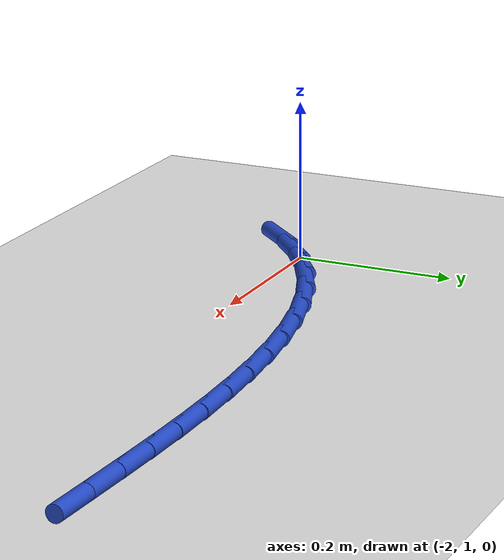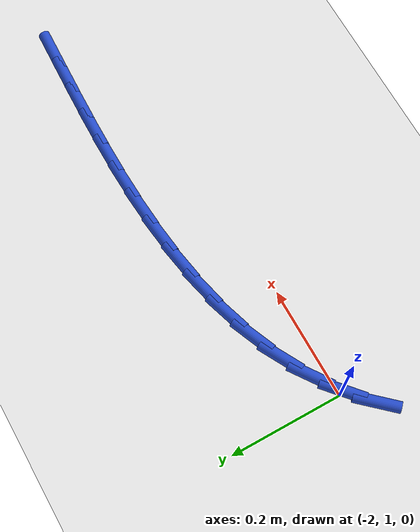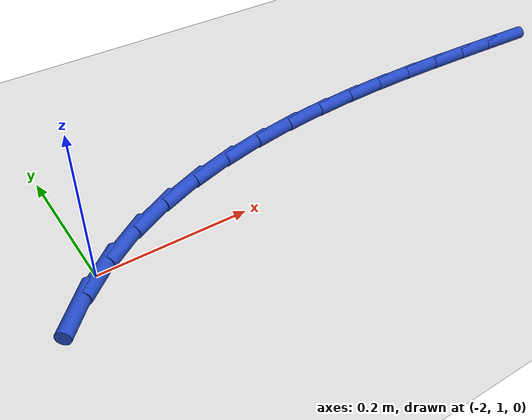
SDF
<sdf version="1.6">
 <world name="default">
  <model name="ground_plane">
   <static>1</static>
   <link name="link">
    <collision name="collision">
     <geometry><plane><normal>0 0 1</normal><size>100 100</size></plane></geometry>
     <surface><friction><ode><mu>100</mu><mu2>50</mu2></ode></friction></surface>
    </collision>
    <visual name="visual">
     <cast_shadows>0</cast_shadows>
     <geometry><plane><normal>0 0 1</normal><size>100 100</size></plane></geometry>
     <material>
      <script><uri>file://media/materials/scripts/gazebo.material</uri><name>Gazebo/WhiteGlow</name></script>
     </material>
    </visual>
   </link>
  </model>
  <model name="line">
   <link name="link_33">
    <pose>-1.2137407368306978 1.1250537046467293 0.01 0 1.57 -0.03736176133366221</pose>
    <collision name="collision">
     <geometry><cylinder><radius>0.01</radius><length>0.08</length></cylinder></geometry>
    </collision>
    <visual name="visual">
     <material>
      <script><name>Gazebo/Blue</name><uri>file://media/materials/scripts/gazebo.material</uri></script>
     </material>
     <geometry><cylinder><radius>0.01</radius><length>0.08</length></cylinder></geometry>
    </visual>
   </link>
   <link name="link_34">
    <pose>-1.2706698525451077 1.127181666914844 0.01 0 1.57 -0.03362534800206802</pose>
    <collision name="collision">
     <geometry><cylinder><radius>0.01</radius><length>0.08</length></cylinder></geometry>
    </collision>
    <visual name="visual">
     <material>
      <script><name>Gazebo/Blue</name><uri>file://media/materials/scripts/gazebo.material</uri></script>
     </material>
     <geometry><cylinder><radius>0.01</radius><length>0.08</length></cylinder></geometry>
    </visual>
   </link>
   <link name="link_35">
    <pose>-1.3276550085750107 1.1290985351164045 0.01 0 1.57 -0.02341732761946599</pose>
    <collision name="collision">
     <geometry><cylinder><radius>0.01</radius><length>0.08</length></cylinder></geometry>
    </collision>
    <visual name="visual">
     <material>
      <script><name>Gazebo/Blue</name><uri>file://media/materials/scripts/gazebo.material</uri></script>
     </material>
     <geometry><cylinder><radius>0.01</radius><length>0.08</length></cylinder></geometry>
    </visual>
   </link>
   <link name="link_36">
    <pose>-1.3848149035274224 1.1304373118276914 0.01 0 1.57 -0.006852198448877881</pose>
    <collision name="collision">
     <geometry><cylinder><radius>0.01</radius><length>0.08</length></cylinder></geometry>
    </collision>
    <visual name="visual">
     <material>
      <script><name>Gazebo/Blue</name><uri>file://media/materials/scripts/gazebo.material</uri></script>
     </material>
     <geometry><cylinder><radius>0.01</radius><length>0.08</length></cylinder></geometry>
    </visual>
   </link>
   <link name="link_37">
    <pose>-1.4422682360093606 1.1308309996249846 0.01 0 1.57 0.015869938669421817</pose>
    <collision name="collision">
     <geometry><cylinder><radius>0.01</radius><length>0.08</length></cylinder></geometry>
    </collision>
    <visual name="visual">
     <material>
      <script><name>Gazebo/Blue</name><uri>file://media/materials/scripts/gazebo.material</uri></script>
     </material>
     <geometry><cylinder><radius>0.01</radius><length>0.08</length></cylinder></geometry>
    </visual>
   </link>
   <link name="link_38">
    <pose>-1.5001337046278413 1.1299126010845635 0.01 0 1.57 0.044450999543644815</pose>
    <collision name="collision">
     <geometry><cylinder><radius>0.01</radius><length>0.08</length></cylinder></geometry>
    </collision>
    <visual name="visual">
     <material>
      <script><name>Gazebo/Blue</name><uri>file://media/materials/scripts/gazebo.material</uri></script>
     </material>
     <geometry><cylinder><radius>0.01</radius><length>0.08</length></cylinder></geometry>
    </visual>
   </link>
   <link name="link_39">
    <pose>-1.5585299942407036 1.1273151166338728 0.01 0 1.57 0.07902952374252589</pose>
    <collision name="collision">
     <geometry><cylinder><radius>0.01</radius><length>0.08</length></cylinder></geometry>
    </collision>
    <visual name="visual">
     <material>
      <script><name>Gazebo/Blue</name><uri>file://media/materials/scripts/gazebo.material</uri></script>
     </material>
     <geometry><cylinder><radius>0.01</radius><length>0.08</length></cylinder></geometry>
    </visual>
   </link>
   <link name="link_40">
    <pose>-1.617437646507398 1.1226499565406955 0.01 0 1.57 0.12152791240318976</pose>
    <collision name="collision">
     <geometry><cylinder><radius>0.01</radius><length>0.08</length></cylinder></geometry>
    </collision>
    <visual name="visual">
     <material>
      <script><name>Gazebo/Blue</name><uri>file://media/materials/scripts/gazebo.material</uri></script>
     </material>
     <geometry><cylinder><radius>0.01</radius><length>0.08</length></cylinder></geometry>
    </visual>
   </link>
   <link name="link_41">
    <pose>-1.6763594049423933 1.115453856833642 0.01 0 1.57 0.173208155284162</pose>
    <collision name="collision">
     <geometry><cylinder><radius>0.01</radius><length>0.08</length></cylinder></geometry>
    </collision>
    <visual name="visual">
     <material>
      <script><name>Gazebo/Blue</name><uri>file://media/materials/scripts/gazebo.material</uri></script>
     </material>
     <geometry><cylinder><radius>0.01</radius><length>0.08</length></cylinder></geometry>
    </visual>
   </link>
   <link name="link_42">
    <pose>-1.7346947860377404 1.105247420369937 0.01 0 1.57 0.2352227452290863</pose>
    <collision name="collision">
     <geometry><cylinder><radius>0.01</radius><length>0.08</length></cylinder></geometry>
    </collision>
    <visual name="visual">
     <material>
      <script><name>Gazebo/Blue</name><uri>file://media/materials/scripts/gazebo.material</uri></script>
     </material>
     <geometry><cylinder><radius>0.01</radius><length>0.08</length></cylinder></geometry>
    </visual>
   </link>
   <link name="link_43">
    <pose>-1.7918433062854882 1.091551250006804 0.01 0 1.57 0.3088789564547979</pose>
    <collision name="collision">
     <geometry><cylinder><radius>0.01</radius><length>0.08</length></cylinder></geometry>
    </collision>
    <visual name="visual">
     <material>
      <script><name>Gazebo/Blue</name><uri>file://media/materials/scripts/gazebo.material</uri></script>
     </material>
     <geometry><cylinder><radius>0.01</radius><length>0.08</length></cylinder></geometry>
    </visual>
   </link>
   <link name="link_44">
    <pose>-1.8472044821776872 1.0738859486014678 0.01 0 1.57 0.39546008494980117</pose>
    <collision name="collision">
     <geometry><cylinder><radius>0.01</radius><length>0.08</length></cylinder></geometry>
    </collision>
    <visual name="visual">
     <material>
      <script><name>Gazebo/Blue</name><uri>file://media/materials/scripts/gazebo.material</uri></script>
     </material>
     <geometry><cylinder><radius>0.01</radius><length>0.08</length></cylinder></geometry>
    </visual>
   </link>
   <link name="link_45">
    <pose>-1.900177830206387 1.0517721190111522 0.01 0 1.57 0.4959048531445742</pose>
    <collision name="collision">
     <geometry><cylinder><radius>0.01</radius><length>0.08</length></cylinder></geometry>
    </collision>
    <visual name="visual">
     <material>
      <script><name>Gazebo/Blue</name><uri>file://media/materials/scripts/gazebo.material</uri></script>
     </material>
     <geometry><cylinder><radius>0.01</radius><length>0.08</length></cylinder></geometry>
    </visual>
   </link>
   <link name="link_46">
    <pose>-1.950162866863639 1.0247303640930816 0.01 0 1.57 0.609982861316349</pose>
    <collision name="collision">
     <geometry><cylinder><radius>0.01</radius><length>0.08</length></cylinder></geometry>
    </collision>
    <visual name="visual">
     <material>
      <script><name>Gazebo/Blue</name><uri>file://media/materials/scripts/gazebo.material</uri></script>
     </material>
     <geometry><cylinder><radius>0.01</radius><length>0.08</length></cylinder></geometry>
    </visual>
   </link>
   <link name="link_47">
    <pose>-1.9965687575909963 0.9922975955763449 0.01 0 1.57 0.7263356535665862</pose>
    <collision name="collision">
     <geometry><cylinder><radius>0.01</radius><length>0.08</length></cylinder></geometry>
    </collision>
    <visual name="visual">
     <material>
      <script><name>Gazebo/Blue</name><uri>file://media/materials/scripts/gazebo.material</uri></script>
     </material>
     <geometry><cylinder><radius>0.01</radius><length>0.08</length></cylinder></geometry>
    </visual>
   </link>
   <link name="link_48">
    <pose>-2.039102128360546 0.9545134996812495 0.01 0 1.57 0.8320944710518838</pose>
    <collision name="collision">
     <geometry><cylinder><radius>0.01</radius><length>0.08</length></cylinder></geometry>
    </collision>
    <visual name="visual">
     <material>
      <script><name>Gazebo/Blue</name><uri>file://media/materials/scripts/gazebo.material</uri></script>
     </material>
     <geometry><cylinder><radius>0.01</radius><length>0.08</length></cylinder></geometry>
    </visual>
   </link>
  </model>
 </world>
</sdf>
